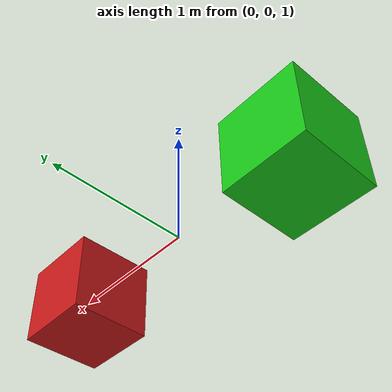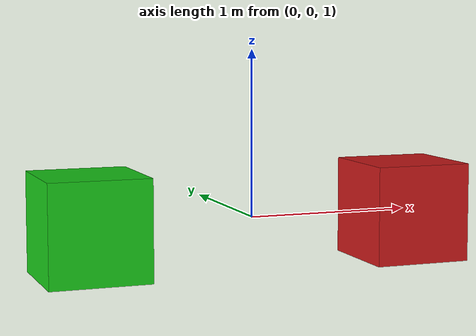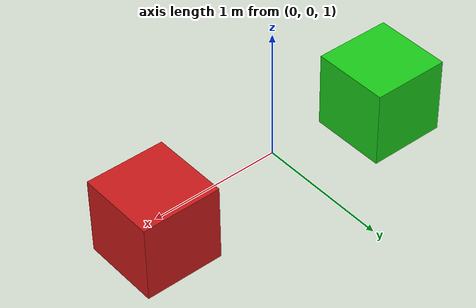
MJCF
<mujoco>
  <option gravity="0 0 -9.81" />
  <worldbody>
    <body name="object_2" pos="-1 0 1">
      <geom type="box" size="0.3 0.3 0.3" density="1" rgba="0.1 0.8 0.1 1" />
      <joint name="object_2_joint" type="free" />
    </body>
    <body name="object_3" pos="1 0 1">
      <geom type="box" size="0.3 0.3 0.3" density="1" rgba="0.8 0.1 0.1 1" />
      <joint name="object_3_joint" type="free" />
    </body>
  </worldbody>
</mujoco>
